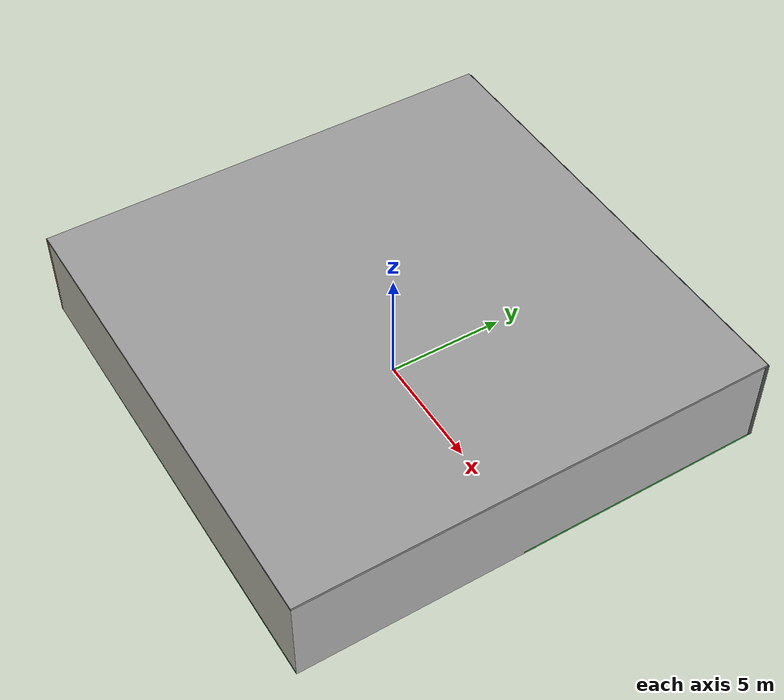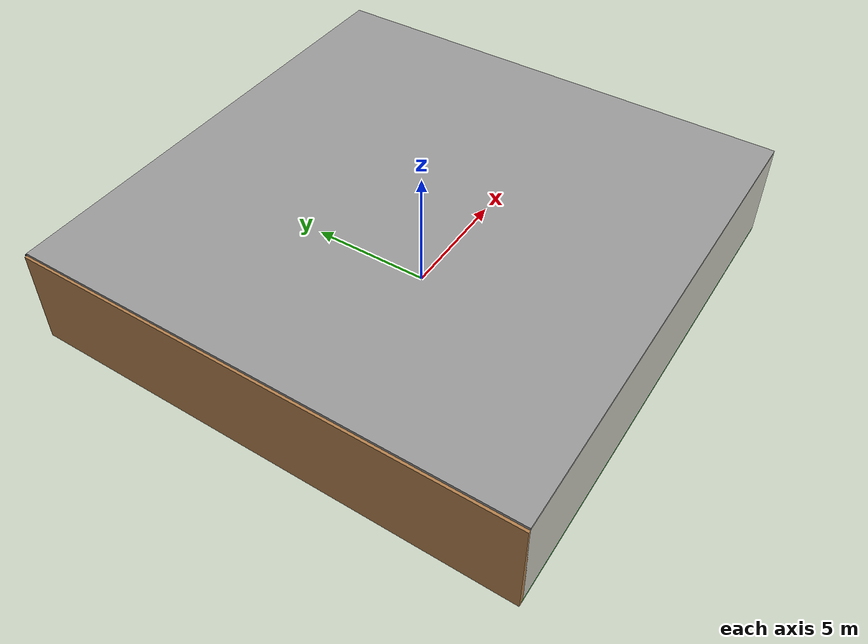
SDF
<sdf version="1.4">
 <world name="default">
  <physics type="ode">
   <max_step_size>0.001</max_step_size>
   <real_time_factor>1</real_time_factor>
   <real_time_update_rate>1000</real_time_update_rate>
   <gravity>0 0 -9.8</gravity>
  </physics>
  <scene><ambient>0.4 0.4 0.4 1</ambient><background>0.7 0.7 0.7 1</background><shadows>1</shadows></scene>
  <model name="Surrounding">
   <static>1</static>
   <link name="Ceiling">
    <collision name="Ceiling_Collision"><geometry><box><size>20 20 0.1</size></box></geometry></collision>
    <visual name="Ceiling_Visual">
     <geometry><box><size>20 20 0.1</size></box></geometry>
     <material>
      <script><uri>file://media/materials/scripts/gazebo.material</uri><name>Gazebo/Grey</name></script>
     </material>
    </visual>
    <pose>0 0 4.05 0 0 0</pose>
   </link>
   <link name="Wall_South">
    <collision name="Wall_South_Collision">
     <geometry><box><size>20 0 4</size></box></geometry>
     <pose>0 0 2 0 -0 0</pose>
    </collision>
    <visual name="Wall_South_Visual">
     <pose>0 0 2 0 -0 0</pose>
     <geometry><box><size>20 0 4</size></box></geometry>
     <material>
      <script><uri>file://media/materials/scripts/gazebo.material</uri><name>Gazebo/PaintedWall</name></script>
     </material>
    </visual>
    <velocity_decay><linear>0</linear><angular>0</angular></velocity_decay>
    <pose>0 -10 0 0 -0 0</pose>
   </link>
   <link name="Wall_East">
    <collision name="Wall_21_Collision">
     <geometry><box><size>20 0 4</size></box></geometry>
     <pose>0 0 2 0 -0 0</pose>
    </collision>
    <visual name="Wall_21_Visual">
     <pose>0 0 2 0 -0 0</pose>
     <geometry><box><size>20 0 4</size></box></geometry>
     <material>
      <script><uri>file://media/materials/scripts/gazebo.material</uri><name>Gazebo/LightOn</name></script>
     </material>
    </visual>
    <velocity_decay><linear>0</linear><angular>0</angular></velocity_decay>
    <pose>10 0 0 0 -0 1.5708</pose>
   </link>
   <link name="Wall_North">
    <collision name="Wall_22_Collision">
     <geometry><box><size>20 0.2 4</size></box></geometry>
     <pose>0 0 2 0 -0 0</pose>
    </collision>
    <visual name="Wall_22_Visual">
     <pose>0 0 2 0 -0 0</pose>
     <geometry><box><size>20 0.2 4</size></box></geometry>
     <material>
      <script><uri>file://media/materials/scripts/gazebo.material</uri><name>Gazebo/DarkGrey</name></script>
     </material>
    </visual>
    <velocity_decay><linear>0</linear><angular>0</angular></velocity_decay>
    <pose>0 10 0 0 -0 0</pose>
   </link>
   <link name="Wall_West">
    <collision name="Wall_23_Collision">
     <geometry><box><size>20 0.2 4</size></box></geometry>
     <pose>0 0 2 0 -0 0</pose>
    </collision>
    <visual name="Wall_23_Visual">
     <pose>0 0 2 0 -0 0</pose>
     <geometry><box><size>20 0.2 4</size></box></geometry>
     <material>
      <script><uri>file://media/materials/scripts/gazebo.material</uri><name>Gazebo/WoodFloor</name></script>
     </material>
    </visual>
    <velocity_decay><linear>0</linear><angular>0</angular></velocity_decay>
    <pose>-10 0 0 0 0 -1.5708</pose>
   </link>
   <link name="Ground_link">
    <collision name="collision">
     <pose>0 0 .05 0 -0 0</pose>
     <geometry><box><size>20 20 0.1</size></box></geometry>
    </collision>
    <visual name="visual">
     <pose>0 0 .05 0 -0 0</pose>
     <geometry><box><size>20 20 0.1</size></box></geometry>
     <material>
      <script><uri>file://media/materials/scripts/gazebo.material</uri><name>Gazebo/Green</name></script>
     </material>
    </visual>
   </link>
   <static>1</static>
  </model>
  <spherical_coordinates>
   <surface_model>EARTH_WGS84</surface_model>
   <latitude_deg>0</latitude_deg>
   <longitude_deg>0</longitude_deg>
   <elevation>0</elevation>
   <heading_deg>0</heading_deg>
  </spherical_coordinates>
  <light name="lightball_0" type="diffuse">
   <diffuse>0.8 0.8 0.8 1</diffuse>
   <specular>0.2 0.2 0.2 1</specular>
   <attenuation>
    <range>100</range>
    <constant>0.7</constant>
    <linear>0.01</linear>
    <quadratic>0.001</quadratic>
   </attenuation>
   <direction>-0.5 0.1 -0.9</direction>
   <pose>-2.96739858838 -8.88395433789 1.44713974954 0 0 0</pose>
  </light>
  <light name="lightball_1" type="diffuse">
   <diffuse>0.8 0.8 0.8 1</diffuse>
   <specular>0.2 0.2 0.2 1</specular>
   <attenuation>
    <range>100</range>
    <constant>0.7</constant>
    <linear>0.01</linear>
    <quadratic>0.001</quadratic>
   </attenuation>
   <direction>-0.5 0.1 -0.9</direction>
   <pose>0.267700769056 3.84769595247 2.28454457456 0 0 0</pose>
  </light>
  <light name="lightball_2" type="diffuse">
   <diffuse>0.8 0.8 0.8 1</diffuse>
   <specular>0.2 0.2 0.2 1</specular>
   <attenuation>
    <range>100</range>
    <constant>0.7</constant>
    <linear>0.01</linear>
    <quadratic>0.001</quadratic>
   </attenuation>
   <direction>-0.5 0.1 -0.9</direction>
   <pose>8.83536536665 1.68300097915 3.7106016289 0 0 0</pose>
  </light>
  <light name="lightball_3" type="diffuse">
   <diffuse>0.8 0.8 0.8 1</diffuse>
   <specular>0.2 0.2 0.2 1</specular>
   <attenuation>
    <range>100</range>
    <constant>0.7</constant>
    <linear>0.01</linear>
    <quadratic>0.001</quadratic>
   </attenuation>
   <direction>-0.5 0.1 -0.9</direction>
   <pose>8.75249640399 6.13281907629 1.4792467851 0 0 0</pose>
  </light>
  <light name="lightball_4" type="diffuse">
   <diffuse>0.8 0.8 0.8 1</diffuse>
   <specular>0.2 0.2 0.2 1</specular>
   <attenuation>
    <range>100</range>
    <constant>0.7</constant>
    <linear>0.01</linear>
    <quadratic>0.001</quadratic>
   </attenuation>
   <direction>-0.5 0.1 -0.9</direction>
   <pose>-0.863910177718 -0.86514759393 2.00134287573 0 0 0</pose>
  </light>
  <light name="lightball_5" type="diffuse">
   <diffuse>0.8 0.8 0.8 1</diffuse>
   <specular>0.2 0.2 0.2 1</specular>
   <attenuation>
    <range>100</range>
    <constant>0.7</constant>
    <linear>0.01</linear>
    <quadratic>0.001</quadratic>
   </attenuation>
   <direction>-0.5 0.1 -0.9</direction>
   <pose>-0.88583506655 -0.526469862651 2.81341799329 0 0 0</pose>
  </light>
  <light name="lightball_6" type="diffuse">
   <diffuse>0.8 0.8 0.8 1</diffuse>
   <specular>0.2 0.2 0.2 1</specular>
   <attenuation>
    <range>100</range>
    <constant>0.7</constant>
    <linear>0.01</linear>
    <quadratic>0.001</quadratic>
   </attenuation>
   <direction>-0.5 0.1 -0.9</direction>
   <pose>0.304316710915 -1.45130946824 0.556190828613 0 0 0</pose>
  </light>
  <light name="lightball_7" type="diffuse">
   <diffuse>0.8 0.8 0.8 1</diffuse>
   <specular>0.2 0.2 0.2 1</specular>
   <attenuation>
    <range>100</range>
    <constant>0.7</constant>
    <linear>0.01</linear>
    <quadratic>0.001</quadratic>
   </attenuation>
   <direction>-0.5 0.1 -0.9</direction>
   <pose>7.78011694375 -3.48886510051 3.59307308511 0 0 0</pose>
  </light>
  <light name="lightball_8" type="diffuse">
   <diffuse>0.8 0.8 0.8 1</diffuse>
   <specular>0.2 0.2 0.2 1</specular>
   <attenuation>
    <range>100</range>
    <constant>0.7</constant>
    <linear>0.01</linear>
    <quadratic>0.001</quadratic>
   </attenuation>
   <direction>-0.5 0.1 -0.9</direction>
   <pose>-4.49126160828 1.96326873422 3.51105149519 0 0 0</pose>
  </light>
  <light name="lightball_9" type="diffuse">
   <diffuse>0.8 0.8 0.8 1</diffuse>
   <specular>0.2 0.2 0.2 1</specular>
   <attenuation>
    <range>100</range>
    <constant>0.7</constant>
    <linear>0.01</linear>
    <quadratic>0.001</quadratic>
   </attenuation>
   <direction>-0.5 0.1 -0.9</direction>
   <pose>3.4899939885 -7.02710017324 1.56807402165 0 0 0</pose>
  </light>
  <light name="lightball_10" type="diffuse">
   <diffuse>0.8 0.8 0.8 1</diffuse>
   <specular>0.2 0.2 0.2 1</specular>
   <attenuation>
    <range>100</range>
    <constant>0.7</constant>
    <linear>0.01</linear>
    <quadratic>0.001</quadratic>
   </attenuation>
   <direction>-0.5 0.1 -0.9</direction>
   <pose>-2.20526014544 8.25029645142 0.983845538486 0 0 0</pose>
  </light>
  <include>
   <uri>model://robocup_3Dsim_goal</uri>
   <pose>-8.11519733329 -2.16526326351 0 0 0 0.525841245938</pose>
  </include>
  <include><uri>model://table</uri><pose>-4.94816315471 3.94274361874 0 0 0 2.34832673835</pose></include>
  <include>
   <uri>model://textured_shapes</uri>
   <pose>1.53044104846 -2.26302147046 0 0 0 1.76224913708</pose>
  </include>
  <include>
   <uri>model://robocup_3Dsim_goal</uri>
   <pose>4.29846000181 -7.9005249461 0 0 0 0.725072222284</pose>
  </include>
  <include><uri>model://cabinet</uri><pose>4.42875680748 8.17855337284 0 0 0 1.88201476037</pose></include>
 </world>
</sdf>

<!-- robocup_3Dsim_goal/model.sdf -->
<sdf version="1.5">
  <model name="robocup_3d_goal">
    <static>true</static>
    <link name="left_post">
      <pose>0 1.05 0.45 0 0 0</pose>
      <collision name="collision">
        <geometry>
          <cylinder>
            <radius>0.05</radius>
            <length>0.9</length>
          </cylinder>
        </geometry>
      </collision>
      <visual name="visual">
        <geometry>
          <cylinder>
            <radius>0.05</radius>
            <length>0.9</length>
          </cylinder>
        </geometry>
        <material>
          <script>
            <uri>file://media/materials/scripts/gazebo.material</uri>
            <name>Gazebo/ZincYellow</name>
          </script>
        </material>
      </visual>
    </link>
    <link name="left_support_horiz_lower">
      <pose>0.30 1.05 0.01 0 0 0</pose>
      <collision name="collision">
        <geometry>
          <box>
            <size>0.50 0.02 0.02</size>
          </box>
        </geometry>
      </collision>
      <visual name="visual">
        <geometry>
          <box>
            <size>0.50 0.02 0.02</size>
          </box>
        </geometry>
        <material>
          <script>
            <uri>file://media/materials/scripts/gazebo.material</uri>
            <name>Gazebo/White</name>
          </script>
        </material>
      </visual>
    </link>
    <link name="left_support_horiz_upper">
      <pose>0.30 1.05 0.79 0 0 0</pose>
      <collision name="collision">
        <geometry>
          <box>
            <size>0.50 0.02 0.02</size>
          </box>
        </geometry>
      </collision>
      <visual name="visual">
        <geometry>
          <box>
            <size>0.50 0.02 0.02</size>
          </box>
        </geometry>
        <material>
          <script>
            <uri>file://media/materials/scripts/gazebo.material</uri>
            <name>Gazebo/White</name>
          </script>
        </material>
      </visual>
    </link>
    <link name="left_support_vertical">
      <pose>0.56 1.05 0.4 0 1.5708 0</pose>
      <collision name="collision">
        <geometry>
          <box>
            <size>0.80 0.02 0.02</size>
          </box>
        </geometry>
      </collision>
      <visual name="visual">
        <geometry>
          <box>
            <size>0.80 0.02 0.02</size>
          </box>
        </geometry>
        <material>
          <script>
            <uri>file://media/materials/scripts/gazebo.material</uri>
            <name>Gazebo/White</name>
          </script>
        </material>
      </visual>
    </link>
    <link name="right_support_horiz_lower">
      <pose>0.30 -1.05 0.01 0 0 0</pose>
      <collision name="collision">
        <geometry>
          <box>
            <size>0.50 0.02 0.02</size>
          </box>
        </geometry>
      </collision>
      <visual name="visual">
        <geometry>
          <box>
            <size>0.50 0.02 0.02</size>
          </box>
        </geometry>
        <material>
          <script>
            <uri>file://media/materials/scripts/gazebo.material</uri>
            <name>Gazebo/White</name>
          </script>
        </material>
      </visual>
    </link>
    <link name="right_support_horiz_upper">
      <pose>0.30 -1.05 0.79 0 0 0</pose>
      <collision name="collision">
        <geometry>
          <box>
            <size>0.50 0.02 0.02</size>
          </box>
        </geometry>
      </collision>
      <visual name="visual">
        <geometry>
          <box>
            <size>0.50 0.02 0.02</size>
          </box>
        </geometry>
        <material>
          <script>
            <uri>file://media/materials/scripts/gazebo.material</uri>
            <name>Gazebo/White</name>
          </script>
        </material>
      </visual>
    </link>
    <link name="right_support_vertical">
      <pose>0.56 -1.05 0.4 0 1.5708 0</pose>
      <collision name="collision">
        <geometry>
          <box>
            <size>0.80 0.02 0.02</size>
          </box>
        </geometry>
      </collision>
      <visual name="visual">
        <geometry>
          <box>
            <size>0.80 0.02 0.02</size>
          </box>
        </geometry>
        <material>
          <script>
            <uri>file://media/materials/scripts/gazebo.material</uri>
            <name>Gazebo/White</name>
          </script>
        </material>
      </visual>
    </link>
    <link name="center_support_horiz_lower">
      <pose>0.56 0 0.01 0 1.5708 0</pose>
      <collision name="collision">
        <geometry>
          <box>
            <size>0.02 2.08 0.02</size>
          </box>
        </geometry>
      </collision>
      <visual name="visual">
        <geometry>
          <box>
            <size>0.02 2.08 0.02</size>
          </box>
        </geometry>
        <material>
          <script>
            <uri>file://media/materials/scripts/gazebo.material</uri>
            <name>Gazebo/White</name>
          </script>
        </material>
      </visual>
    </link>
    <link name="center_support_horiz_upper">
      <pose>0.56 0 0.79 0 1.5708 0</pose>
      <collision name="collision">
        <geometry>
          <box>
            <size>0.02 2.08 0.02</size>
          </box>
        </geometry>
      </collision>
      <visual name="visual">
        <geometry>
          <box>
            <size>0.02 2.08 0.02</size>
          </box>
        </geometry>
        <material>
          <script>
            <uri>file://media/materials/scripts/gazebo.material</uri>
            <name>Gazebo/White</name>
          </script>
        </material>
      </visual>
    </link>
    <link name="right_post">
      <pose>0 -1.05 0.45 0 0 0</pose>
      <collision name="collision">
        <geometry>
          <cylinder>
            <radius>0.05</radius>
            <length>0.9</length>
          </cylinder>
        </geometry>
      </collision>
      <visual name="visual">
        <geometry>
          <cylinder>
            <radius>0.05</radius>
            <length>0.9</length>
          </cylinder>
        </geometry>
        <material>
          <script>
            <uri>file://media/materials/scripts/gazebo.material</uri>
            <name>Gazebo/ZincYellow</name>
          </script>
        </material>
      </visual>
    </link>
    <link name="crossbar">
      <pose>0 0 0.85 1.57 1.57 0</pose>
      <collision name="collision">
        <geometry>
          <cylinder>
            <radius>0.05</radius>
            <length>2.0</length>
          </cylinder>
        </geometry>
      </collision>
      <visual name="visual">
        <geometry>
          <cylinder>
            <radius>0.05</radius>
            <length>2.0</length>
          </cylinder>
        </geometry>
        <material>
          <script>
            <uri>file://media/materials/scripts/gazebo.material</uri>
            <name>Gazebo/ZincYellow</name>
          </script>
        </material>
      </visual>
    </link>
    <link name="center_net">
      <pose>0.56 0 0.40 0 0 0</pose>
      <collision name="collision">
        <geometry>
          <box>
            <size>0.01 2.1 0.80</size>
          </box>
        </geometry>
      </collision>
      <visual name="visual">
        <geometry>
          <box>
            <size>0.01 2.1 0.80</size>
          </box>
        </geometry>
        <material>
          <script>
            <uri>model://../model_source/models/robocup09_spl_field/materials/scripts/</uri>
            <uri>model://../model_source/models/robocup09_spl_field/materials/textures/</uri>
            <name>RoboCup/Net</name>
          </script>
        </material>
      </visual>
    </link>
    <link name="left_net">
      <pose>0.30 1.05 0.40 0 0 0</pose>
      <collision name="collision">
        <geometry>
          <box>
            <size>0.50 0.01 0.76</size>
          </box>
        </geometry>
      </collision>
      <visual name="visual">
        <geometry>
          <box>
            <size>0.50 0.01 0.76</size>
          </box>
        </geometry>
        <material>
          <script>
            <uri>model://../model_source/models/robocup09_spl_field/materials/scripts/</uri>
            <uri>model://../model_source/models/robocup09_spl_field/materials/textures/</uri>
            <name>RoboCup/Net</name>
          </script>
        </material>
      </visual>
    </link>
    <link name="right_net">
      <pose>0.30 -1.05 0.40 0 0 0</pose>
      <collision name="collision">
        <geometry>
          <box>
            <size>0.50 0.01 0.76</size>
          </box>
        </geometry>
      </collision>
      <visual name="visual">
        <geometry>
          <box>
            <size>0.50 0.01 0.76</size>
          </box>
        </geometry>
        <material>
          <script>
            <uri>model://../model_source/models/robocup09_spl_field/materials/scripts/</uri>
            <uri>model://../model_source/models/robocup09_spl_field/materials/textures/</uri>
            <name>RoboCup/Net</name>
          </script>
        </material>
      </visual>
    </link>
  </model>
</sdf>

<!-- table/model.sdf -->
<sdf version="1.5">
  <model name="table">
    <static>true</static>
    <link name="link">
      <collision name="surface">
        <pose>0 0 1.0 0 0 0</pose>
        <geometry>
          <box>
            <size>1.5 0.8 0.03</size>
          </box>
        </geometry>
        <surface>
          <friction>
            <ode>
              <mu>0.6</mu>
              <mu2>0.6</mu2>
            </ode>
          </friction>
        </surface>
      </collision>
      <visual name="visual1">
        <pose>0 0 1.0 0 0 0</pose>
        <geometry>
          <box>
            <size>1.5 0.8 0.03</size>
          </box>
        </geometry>
        <material>
          <script>
            <uri>model://media/materials/scripts/gazebo.material</uri>
            <name>Gazebo/Wood</name>
          </script>
        </material>
      </visual>
      <collision name="front_left_leg">
        <pose>0.68 0.38 0.5 0 0 0</pose>
        <geometry>
          <cylinder>
            <radius>0.02</radius>
            <length>1.0</length>
          </cylinder>
        </geometry>
      </collision>
      <visual name="front_left_leg">
        <pose>0.68 0.38 0.5 0 0 0</pose>
        <geometry>
          <cylinder>
            <radius>0.02</radius>
            <length>1.0</length>
          </cylinder>
        </geometry>
        <material>
          <script>
            <uri>model://media/materials/scripts/gazebo.material</uri>
            <name>Gazebo/Grey</name>
          </script>
        </material>
      </visual>
      <collision name="front_right_leg">
        <pose>0.68 -0.38 0.5 0 0 0</pose>
        <geometry>
          <cylinder>
            <radius>0.02</radius>
            <length>1.0</length>
          </cylinder>
        </geometry>
      </collision>
      <visual name="front_right_leg">
        <pose>0.68 -0.38 0.5 0 0 0</pose>
        <geometry>
          <cylinder>
            <radius>0.02</radius>
            <length>1.0</length>
          </cylinder>
        </geometry>
        <material>
          <script>
            <uri>model://media/materials/scripts/gazebo.material</uri>
            <name>Gazebo/Grey</name>
          </script>
        </material>
      </visual>
      <collision name="back_right_leg">
        <pose>-0.68 -0.38 0.5 0 0 0</pose>
        <geometry>
          <cylinder>
            <radius>0.02</radius>
            <length>1.0</length>
          </cylinder>
        </geometry>
      </collision>
      <visual name="back_right_leg">
        <pose>-0.68 -0.38 0.5 0 0 0</pose>
        <geometry>
          <cylinder>
            <radius>0.02</radius>
            <length>1.0</length>
          </cylinder>
        </geometry>
        <material>
          <script>
            <uri>model://media/materials/scripts/gazebo.material</uri>
            <name>Gazebo/Grey</name>
          </script>
        </material>
      </visual>
      <collision name="back_left_leg">
        <pose>-0.68 0.38 0.5 0 0 0</pose>
        <geometry>
          <cylinder>
            <radius>0.02</radius>
            <length>1.0</length>
          </cylinder>
        </geometry>
      </collision>
      <visual name="back_left_leg">
        <pose>-0.68 0.38 0.5 0 0 0</pose>
        <geometry>
          <cylinder>
            <radius>0.02</radius>
            <length>1.0</length>
          </cylinder>
        </geometry>
        <material>
          <script>
            <uri>model://media/materials/scripts/gazebo.material</uri>
            <name>Gazebo/Grey</name>
          </script>
        </material>
      </visual>
    </link>
  </model>
</sdf>

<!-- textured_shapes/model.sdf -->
<sdf version="1.6">
  <model name="textured_shapes">
    <pose>0 0 0.5 0 0 0</pose>
    <link name="box">
      <pose>0 -1.5 0 0 0 0</pose>
      <collision name="collision">
        <geometry>
          <box>
            <size>1 1 1</size>
          </box>
        </geometry>
      </collision>
      <visual name="visual">
        <geometry>
          <box>
            <size>1 1 1</size>
          </box>
        </geometry>
        <material>
          <script>
            <uri>model://../model_source/models/textured_shapes/materials/scripts</uri>
            <uri>model://../model_source/models/textured_shapes/materials/textures</uri>
            <name>TexturedShape/Squares</name>
          </script>
        </material>
      </visual>
    </link>
    <link name="sphere">
      <collision name="collision">
        <geometry>
          <sphere>
            <radius>0.5</radius>
          </sphere>
        </geometry>
      </collision>
      <visual name="visual">
        <geometry>
          <sphere>
            <radius>0.5</radius>
          </sphere>
        </geometry>
        <material>
          <script>
            <uri>model://../model_source/models/textured_shapes/materials/scripts</uri>
            <uri>model://../model_source/models/textured_shapes/materials/textures</uri>
            <name>TexturedShape/Squares</name>
          </script>
        </material>
      </visual>
    </link>
    <link name="cylinder">
      <pose>0 1.5 0 0 0 0</pose>
      <collision name="collision">
        <geometry>
          <cylinder>
            <radius>0.5</radius>
            <length>1</length>
          </cylinder>
        </geometry>
      </collision>
      <visual name="visual">
        <geometry>
          <cylinder>
            <radius>0.5</radius>
            <length>1</length>
          </cylinder>
        </geometry>
        <material>
          <script>
            <uri>model://../model_source/models/textured_shapes/materials/scripts</uri>
            <uri>model://../model_source/models/textured_shapes/materials/textures</uri>
            <name>TexturedShape/Squares</name>
          </script>
        </material>
      </visual>
    </link>
  </model>
</sdf>

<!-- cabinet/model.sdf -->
<sdf version="1.5">
  <model name="cabinet">
    <static>true</static>
    <link name="cabinet_bottom_plate">
      <inertial>
        <pose>0 0 -1 0 0 0</pose>
        <inertia>
          <ixx>2.050000</ixx>
          <ixy>0</ixy>
          <ixz>0</ixz>
          <iyy>2.050000</iyy>
          <iyz>0</iyz>
          <izz>2.050000</izz>
        </inertia>
        <mass>25.000000</mass>
      </inertial>
      <collision name="cabinet_bottom_plate_geom">
        <pose>0 0 0.010000 0 0 0</pose>
        <geometry>
          <box>
            <size>0.450000 0.450000 0.020000</size>
          </box>
        </geometry>
      </collision>
      <visual name="cabinet_bottom_plate_geom_visual">
        <pose>0 0 0.010000 0 0 0</pose>
        <geometry>
          <box>
            <size>0.450000 0.450000 0.020000</size>
          </box>
        </geometry>
        <material>
          <script>
            <uri>model://media/materials/scripts/gazebo.material</uri>
            <name>Gazebo/Wood</name>
          </script>
        </material>
      </visual>
      <collision name="cabinet_bottom_plate_geom_cabinet_back_plate">
        <pose>0.235000 0 0.510000 0 0 0</pose>
        <geometry>
          <box>
            <size>0.020000 0.450000 1.020000</size>
          </box>
        </geometry>
      </collision>
      <visual name="cabinet_bottom_plate_geom_cabinet_back_plate_visual">
        <pose>0.235000 0 0.510000 0 0 0</pose>
        <geometry>
          <box>
            <size>0.020000 0.450000 1.020000</size>
          </box>
        </geometry>
        <material>
          <script>
            <uri>model://media/materials/scripts/gazebo.material</uri>
            <name>Gazebo/Wood</name>
          </script>
        </material>
      </visual>
      <collision name="cabinet_bottom_plate_geom_cabinet_left_plate">
        <pose>0 0.235000 0.510000 0 0 0</pose>
        <geometry>
          <box>
            <size>0.450000 0.020000 1.020000</size>
          </box>
        </geometry>
      </collision>
      <visual name="cabinet_bottom_plate_geom_cabinet_left_plate_visual">
        <pose>0 0.235000 0.510000 0 0 0</pose>
        <geometry>
          <box>
            <size>0.450000 0.020000 1.020000</size>
          </box>
        </geometry>
        <material>
          <script>
            <uri>model://media/materials/scripts/gazebo.material</uri>
            <name>Gazebo/Wood</name>
          </script>
        </material>
      </visual>
      <collision name="cabinet_bottom_plate_geom_cabinet_middle_plate">
        <pose>0 0 0.510000 0 0 0</pose>
        <geometry>
          <box>
            <size>0.450000 0.450000 0.020000</size>
          </box>
        </geometry>
      </collision>
      <visual name="cabinet_bottom_plate_geom_cabinet_middle_plate_visual">
        <pose>0 0 0.510000 0 0 0</pose>
        <geometry>
          <box>
            <size>0.450000 0.450000 0.020000</size>
          </box>
        </geometry>
        <material>
          <script>
            <uri>model://media/materials/scripts/gazebo.material</uri>
            <name>Gazebo/Wood</name>
          </script>
        </material>
      </visual>
      <collision name="cabinet_bottom_plate_geom_cabinet_right_plate">
        <pose>0 -0.235000 0.510000 0 0 0</pose>
        <geometry>
          <box>
            <size>0.450000 0.020000 1.020000</size>
          </box>
        </geometry>
      </collision>
      <visual name="cabinet_bottom_plate_geom_cabinet_right_plate_visual">
        <pose>0 -0.235000 0.510000 0 0 0</pose>
        <geometry>
          <box>
            <size>0.450000 0.020000 1.020000</size>
          </box>
        </geometry>
        <material>
          <script>
            <uri>model://media/materials/scripts/gazebo.material</uri>
            <name>Gazebo/Wood</name>
          </script>
        </material>
      </visual>
      <collision name="cabinet_bottom_plate_geom_cabinet_top_plate">
        <pose>0 0 1.010000 0 0 0</pose>
        <geometry>
          <box>
            <size>0.450000 0.450000 0.020000</size>
          </box>
        </geometry>
      </collision>
      <visual name="cabinet_bottom_plate_geom_cabinet_top_plate_visual">
        <pose>0 0 1.010000 0 0 0</pose>
        <geometry>
          <box>
            <size>0.450000 0.450000 0.020000</size>
          </box>
        </geometry>
        <material>
          <script>
            <uri>model://media/materials/scripts/gazebo.material</uri>
            <name>Gazebo/Wood</name>
          </script>
        </material>
      </visual>
    </link>
  </model>
</sdf>
